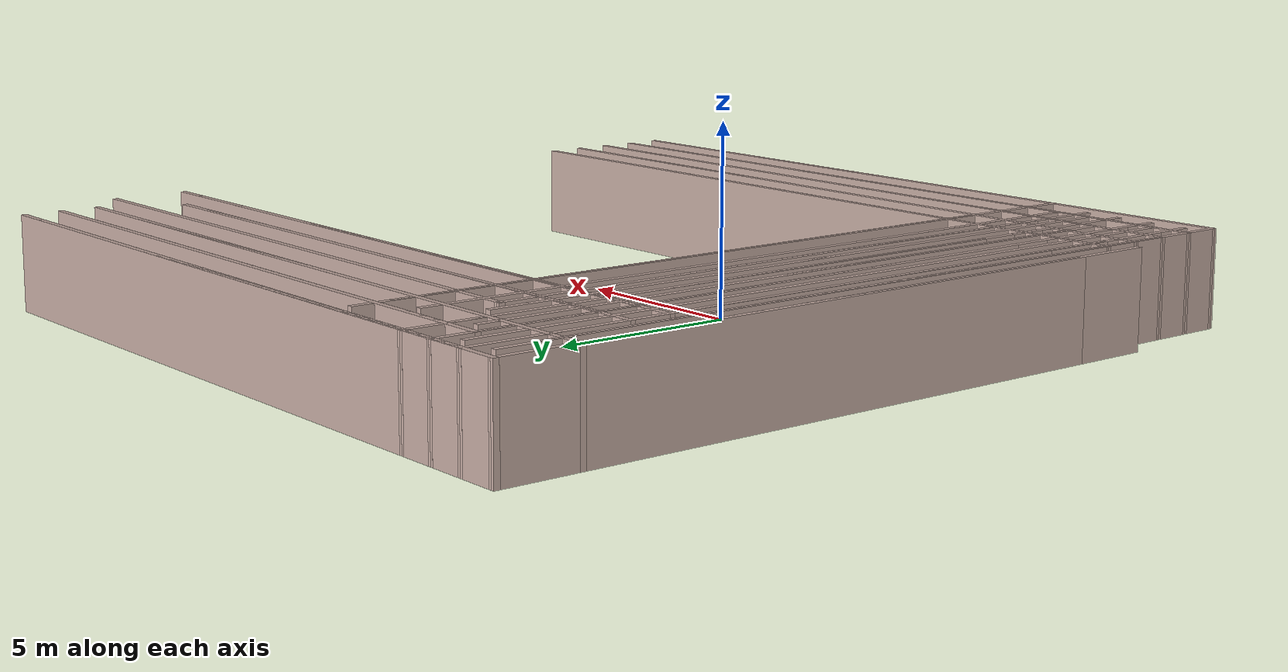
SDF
<?xml version="1.0" ?>
<sdf version="1.7">
    <model name="labyrinth">

			<include><name>04v</name><uri>model://wall</uri><pose>0 4 0 0 0 1.5707963267948966</pose></include>

			<include><name>05h</name><uri>model://wall</uri><pose>0 5 0 0 0 0</pose></include>

			<include><name>03h</name><uri>model://wall</uri><pose>0 3 0 0 0 0</pose></include>

			<include><name>03v</name><uri>model://wall</uri><pose>0 3 0 0 0 1.5707963267948966</pose></include>

			<include><name>02v</name><uri>model://wall</uri><pose>0 2 0 0 0 1.5707963267948966</pose></include>

			<include><name>01v</name><uri>model://wall</uri><pose>0 1 0 0 0 1.5707963267948966</pose></include>

			<include><name>00h</name><uri>model://wall_White</uri><pose>0 0 0 0 0 0</pose></include>

			<include><name>00v</name><uri>model://wall</uri><pose>0 0 0 0 0 1.5707963267948966</pose></include>

			<include><name>14v</name><uri>model://wall</uri><pose>1 4 0 0 0 1.5707963267948966</pose></include>

			<include><name>15h</name><uri>model://wall</uri><pose>1 5 0 0 0 0</pose></include>

			<include><name>13h</name><uri>model://wall</uri><pose>1 3 0 0 0 0</pose></include>

			<include><name>11h</name><uri>model://wall</uri><pose>1 1 0 0 0 0</pose></include>

			<include><name>11v</name><uri>model://wall</uri><pose>1 1 0 0 0 1.5707963267948966</pose></include>

			<include><name>10h</name><uri>model://wall</uri><pose>1 0 0 0 0 0</pose></include>

			<include><name>24h</name><uri>model://wall</uri><pose>2 4 0 0 0 0</pose></include>

			<include><name>25h</name><uri>model://wall</uri><pose>2 5 0 0 0 0</pose></include>

			<include><name>23v</name><uri>model://wall</uri><pose>2 3 0 0 0 1.5707963267948966</pose></include>

			<include><name>22v</name><uri>model://wall</uri><pose>2 2 0 0 0 1.5707963267948966</pose></include>

			<include><name>21h</name><uri>model://wall</uri><pose>2 1 0 0 0 0</pose></include>

			<include><name>20h</name><uri>model://wall</uri><pose>2 0 0 0 0 0</pose></include>

			<include><name>34h</name><uri>model://wall</uri><pose>3 4 0 0 0 0</pose></include>

			<include><name>35h</name><uri>model://wall</uri><pose>3 5 0 0 0 0</pose></include>

			<include><name>33h</name><uri>model://wall</uri><pose>3 3 0 0 0 0</pose></include>

			<include><name>32v</name><uri>model://wall</uri><pose>3 2 0 0 0 1.5707963267948966</pose></include>

			<include><name>31v</name><uri>model://wall</uri><pose>3 1 0 0 0 1.5707963267948966</pose></include>

			<include><name>30h</name><uri>model://wall</uri><pose>3 0 0 0 0 0</pose></include>

			<include><name>45h</name><uri>model://wall_Red</uri><pose>4 5 0 0 0 0</pose></include>

			<include><name>54v</name><uri>model://wall</uri><pose>5 4 0 0 0 1.5707963267948966</pose></include>

			<include><name>43v</name><uri>model://wall</uri><pose>4 3 0 0 0 1.5707963267948966</pose></include>

			<include><name>53v</name><uri>model://wall</uri><pose>5 3 0 0 0 1.5707963267948966</pose></include>

			<include><name>42h</name><uri>model://wall</uri><pose>4 2 0 0 0 0</pose></include>

			<include><name>52v</name><uri>model://wall</uri><pose>5 2 0 0 0 1.5707963267948966</pose></include>

			<include><name>41v</name><uri>model://wall</uri><pose>4 1 0 0 0 1.5707963267948966</pose></include>

			<include><name>51v</name><uri>model://wall</uri><pose>5 1 0 0 0 1.5707963267948966</pose></include>

			<include><name>40h</name><uri>model://wall</uri><pose>4 0 0 0 0 0</pose></include>

			<include><name>50v</name><uri>model://wall</uri><pose>5 0 0 0 0 1.5707963267948966</pose></include>

	</model>
</sdf>

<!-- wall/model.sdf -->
<sdf version='1.6'>
  <model name='wall'>
    <pose frame=''>-1.26581 1.80502 0 0 -0 0</pose>
    <link name='Wall_0'>
      <collision name='Wall_0_Collision'>
        <geometry>
          <box>
            <size>16.5 0.15 2.5</size>
          </box>
        </geometry>
        <pose frame=''>0 0 1.25 0 -0 0</pose>
      </collision>
      <visual name='Wall_0_Visual'>
        <pose frame=''>0 0 1.25 0 -0 0</pose>
        <geometry>
          <box>
            <size>16.5 0.15 2.5</size>
          </box>
        </geometry>
        <material>
          <script>
            <uri>file://media/materials/scripts/gazebo.material</uri>
            <name>Gazebo/Grey</name>
          </script>
          <ambient>0.760784 0.662745 0.627451 1</ambient>
        </material>
        <meta>
          <layer>0</layer>
        </meta>
      </visual>
      <pose frame=''>-8.71419 -1.8e-05 0 0 0 -1.5708</pose>
    </link>
    <link name='Wall_2'>
      <collision name='Wall_2_Collision'>
        <geometry>
          <box>
            <size>17.5784 0.15 2.5</size>
          </box>
        </geometry>
        <pose frame=''>0 0 1.25 0 -0 0</pose>
      </collision>
      <visual name='Wall_2_Visual'>
        <pose frame=''>0 0 1.25 0 -0 0</pose>
        <geometry>
          <box>
            <size>17.5784 0.15 2.5</size>
          </box>
        </geometry>
        <material>
          <script>
            <uri>file://media/materials/scripts/gazebo.material</uri>
            <name>Gazebo/Grey</name>
          </script>
          <ambient>0.760784 0.662745 0.627451 1</ambient>
        </material>
        <meta>
          <layer>0</layer>
        </meta>
      </visual>
      <pose frame=''>0 8.17066 0 0 0 -0.000496</pose>
    </link>
    <static>1</static>
  </model>
</sdf>

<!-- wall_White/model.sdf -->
<sdf version="1.7">
	<model name="wall_White">
		<link name="link">
			<visual name="visual">

				<pose>0.5 0.025 0.1 0 0 0</pose>

				<geometry>
					<box>
						<size>1 0.05 0.2</size>
					</box>
				</geometry>

				<material>
					<script>
						<uri>file://media/materials/scripts/gazebo.material</uri>
						<name>Gazebo/White</name>
					</script>
				</material>
			</visual>
			<collision name="collision">

				<pose>0.5 0.025 0.1 0 0 0</pose>

				<geometry>
					<box>
						<size>1 0.05 0.2</size>
					</box>
				</geometry>

				<laser_retro>3</laser_retro>
			</collision>
		</link>
	</model>
</sdf>

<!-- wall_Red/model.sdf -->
<sdf version="1.7">
	<model name="wall_Red">
		<link name="link">
			<visual name="visual">

				<pose>0.5 0.025 0.1 0 0 0</pose>

				<geometry>
					<box>
						<size>1 0.05 0.2</size>
					</box>
				</geometry>

				<material>
					<script>
						<uri>file://media/materials/scripts/gazebo.material</uri>
						<name>Gazebo/Red</name>
					</script>
				</material>
			</visual>
			<collision name="collision">

				<pose>0.5 0.025 0.1 0 0 0</pose>

				<geometry>
					<box>
						<size>1 0.05 0.2</size>
					</box>
				</geometry>

				<laser_retro>2</laser_retro>
			</collision>
			<sensor name='sensor_contact_wall' type='contact'>
				<contact><collision>collision</collision></contact>
			</sensor>
		</link>
		<plugin filename="libTouchPlugin.so" name='plugin_touch'>
			<sensor>sensor_contact_wall</sensor>
			<target>tb3</target>
			<namespace>finish_wall</namespace>
			<time>0.00001</time>
			<enabled>true</enabled>
		</plugin>
	</model>
</sdf>
